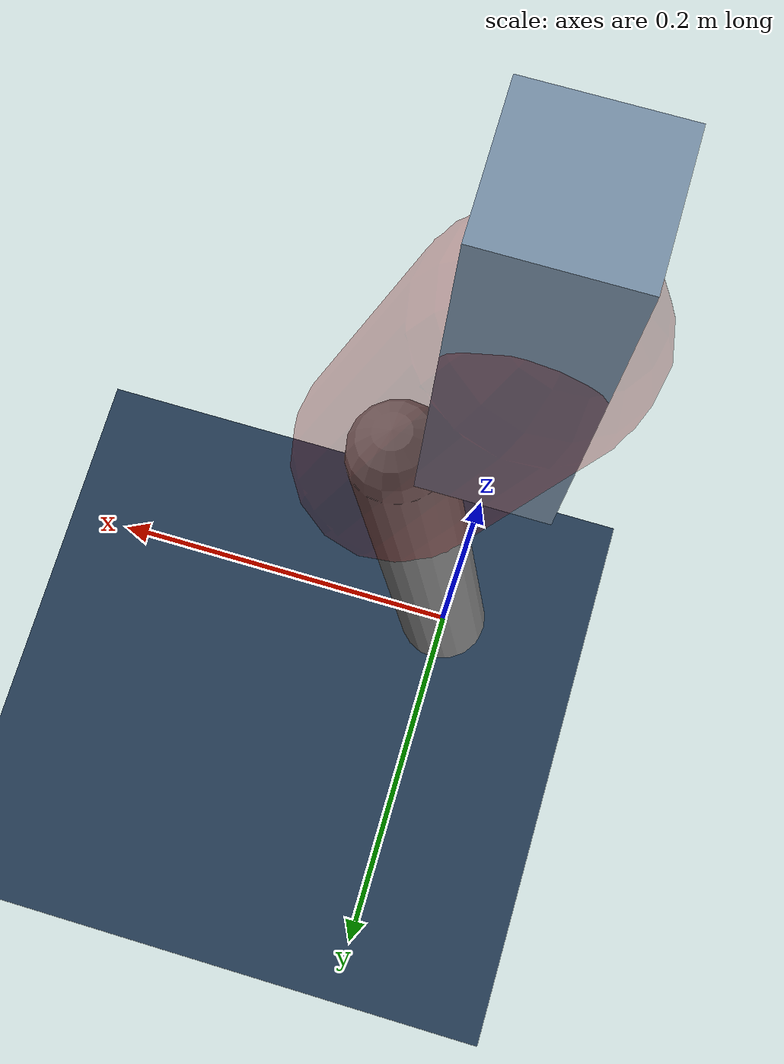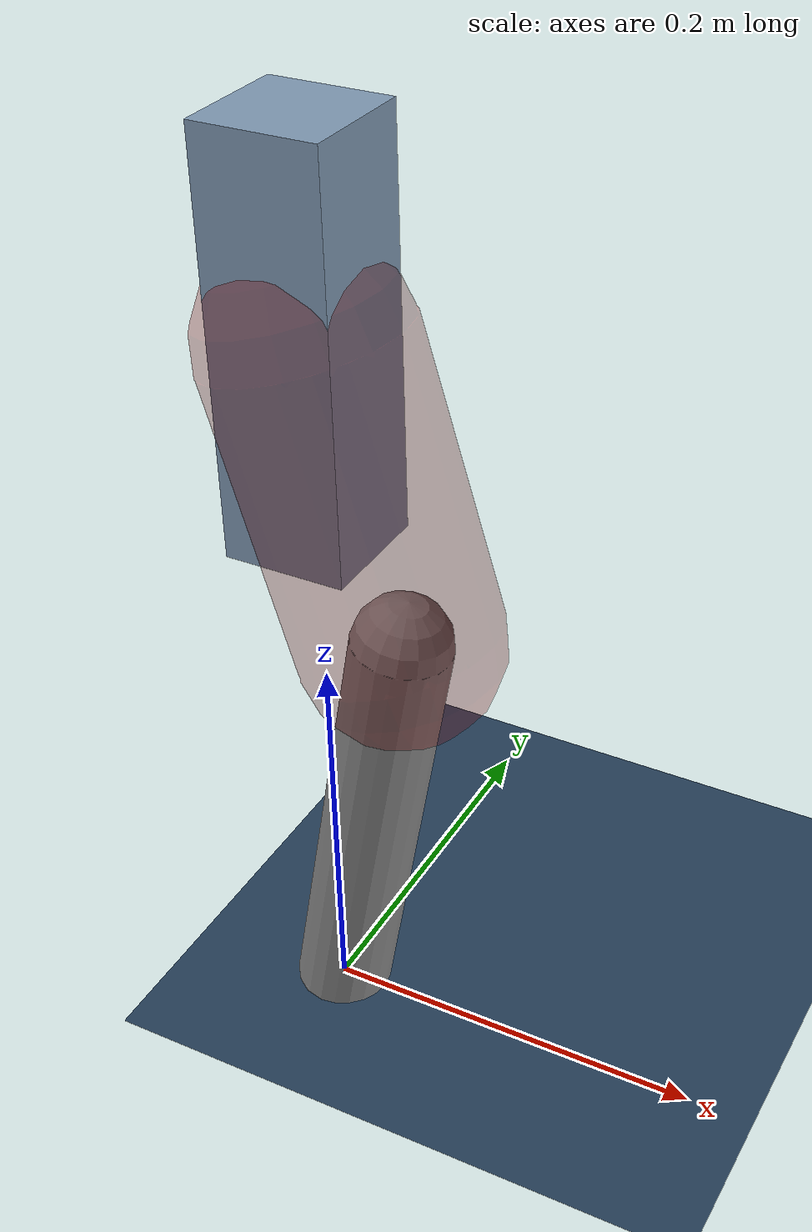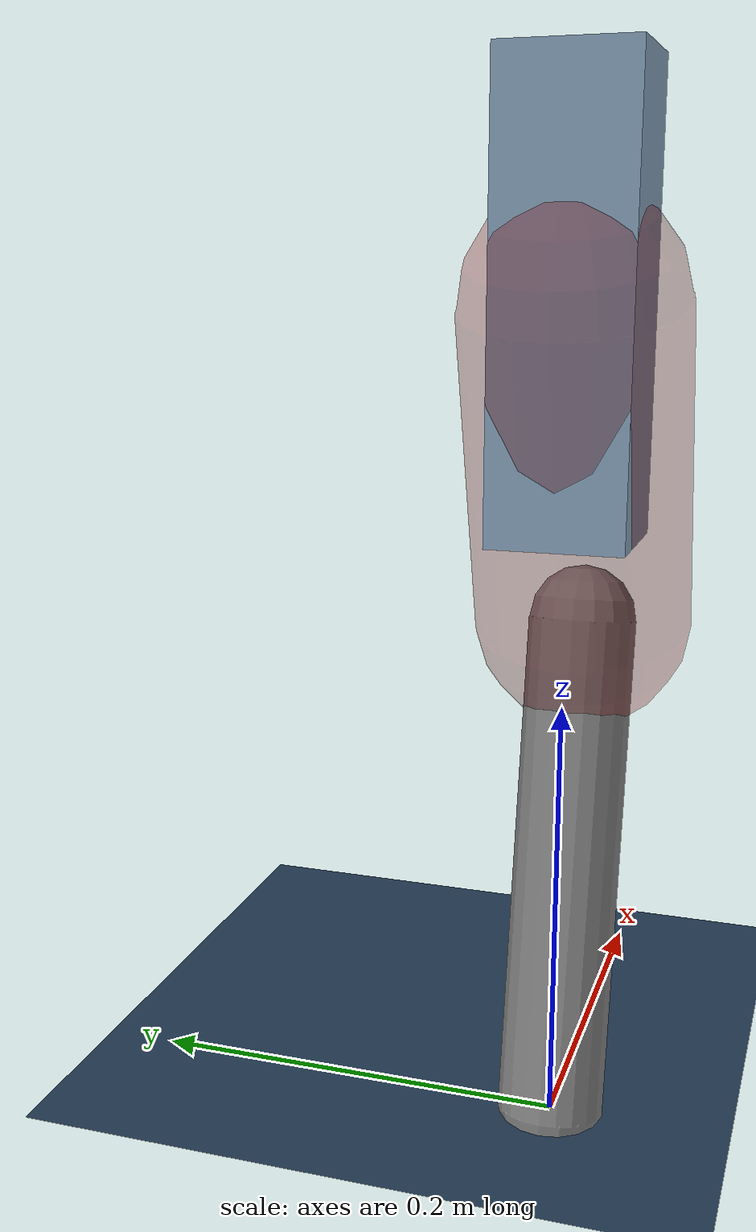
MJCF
<mujoco model="Hopper2D">
	<compiler inertiafromgeom="true" angle="radian" />
	<option timestep="0.001" integrator="implicit" cone="elliptic" solver="Newton" tolerance="1e-10" />

	<default>
		<geom contype="1" conaffinity="1" condim="3" friction="2 0.005 0.0001" solref="0.005 1" />
		<joint limited="true" damping="0.1" />
	</default>

	<asset>
		<texture name="skybox" type="skybox" builtin="gradient" rgb1=".4 .6 .8" rgb2="0 0 0" width="800" height="800" />
		<texture name="grid" type="2d" builtin="checker" rgb1=".1 .2 .3" rgb2=".2 .3 .4" width="300" height="300" mark="edge" markrgb=".2 .3 .4" />
		<material name="ground" texture="grid" texrepeat="1 1" texuniform="true" reflectance="0.1" />
		<material name="leg" rgba="0.5 0.6 0.7 1" />
	</asset>

	<worldbody>

		<geom name="floor" type="plane" size="5 5 0.25" material="ground" />

		<light directional="false" diffuse="0.8 0.8 0.8" specular="0.3 0.3 0.3" pos="0 0 2" dir="0 0 -1" />
		<light mode="targetbodycom" target="base" directional="false" diffuse="0.8 0.8 0.8" specular="0.3 0.3 0.3" pos="0 0 2" dir="0 0 -1" />

		<camera name="fixed" pos="0 -2 1" xyaxes="1 0 0 0 0 1" />
		<camera name="tracking" mode="trackcom" pos="0 -3 1" />

		<body name="root" pos="0 0 0.3756118018358706">
			<joint name="slide_x" type="slide" axis="1 0 0" range="-100 100" />
			<joint name="slide_z" type="slide" axis="0 0 1" range="0 10" />

			<body name="base" pos="0 0 0">
				<geom name="torso" type="box" size="0.03 0.03 0.1" mass="2.125" material="leg" />

				<body name="link1" pos="0 0 0" euler="0 1.2839798073557747 0">
					<joint type="hinge" axis="0 -1 0" pos="0 0 0" name="hinge1" limited="true" range="-3.14 3.14" stiffness="0" damping="0.1" />
					<geom name="thigh" type="capsule" fromto="0 0 0 0.1501783306342536 0 0" size="0.05" rgba="0.5 0 0 0.3" mass="0.6089279935222087" />

					<body name="link2" pos="0.1501783306342536 0 0" euler="0 0.4682670019976276 0">
						<joint type="hinge" axis="0 -1 0" pos="0 0 0" name="hinge2" limited="true" range="-3.14 3.14" stiffness="0" damping="0.1" />
						<geom name="shank" type="capsule" fromto="0 0 0 0.23543347120161706 0 0" size="0.025" mass="0.43049012408145537" />

					</body>
				</body>
			</body>
		</body>
	</worldbody>

	<actuator>
		<motor name="torque1" joint="hinge1" ctrlrange="-45.36297223961339 45.36297223961339" ctrllimited="true" gear="1" />
		<motor name="torque2" joint="hinge2" ctrlrange="-91.85860094321384 91.85860094321384" ctrllimited="true" gear="1" />
	</actuator>
</mujoco>
